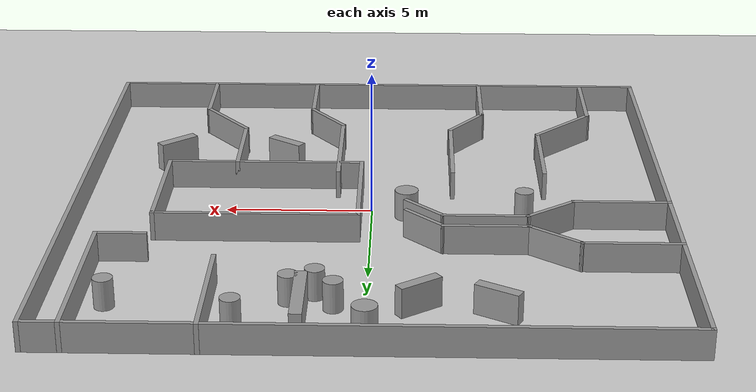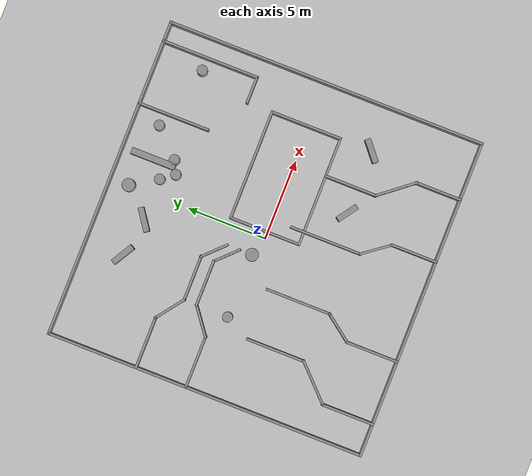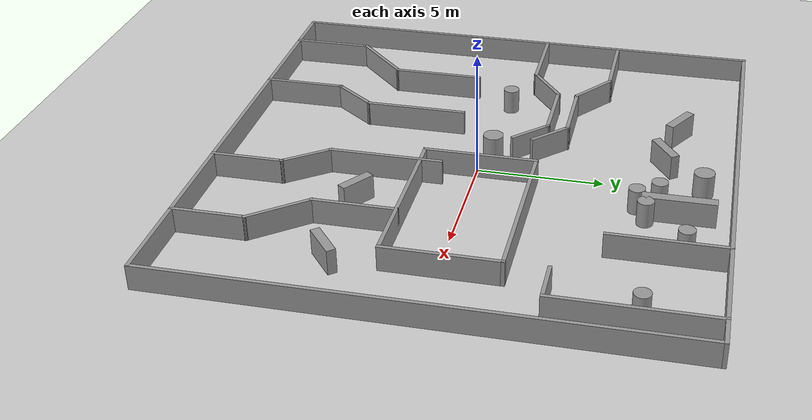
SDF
<?xml version="1.0" ?>
<sdf version="1.6">
  <world name="multi">

    <include><uri>model://sun</uri></include>
    <include><uri>model://ground_plane</uri></include>

    <physics name="default_physics" default="true" type="ode">
      <max_step_size>0.001</max_step_size>
      <real_time_factor>1.0</real_time_factor>
      <real_time_update_rate>1000</real_time_update_rate>
    </physics>

    <scene>
      <ambient>0.4 0.4 0.4 1</ambient>
      <background>0.7 0.7 0.7 1</background>
      <shadows>false</shadows>
    </scene>

    <model name="multi_obstacles">
      <static>true</static>
      <link name="body">
      <collision name="col_0">
        <pose>0.0000 -10.0000 0.5000 0 0 0.00000</pose>
        <geometry>
          <box><size>20.1500 0.1500 1.0000</size></box>
        </geometry>
      </collision>
      <visual name="vis_0">
        <pose>0.0000 -10.0000 0.5000 0 0 0.00000</pose>
        <geometry>
          <box><size>20.1500 0.1500 1.0000</size></box>
        </geometry>
        <material>
          <script>
            <uri>file://media/materials/scripts/gazebo.material</uri>
            <name>Gazebo/Grey</name>
          </script>
        </material>
      </visual>
      <collision name="col_1">
        <pose>10.0000 0.0000 0.5000 0 0 1.57080</pose>
        <geometry>
          <box><size>20.1500 0.1500 1.0000</size></box>
        </geometry>
      </collision>
      <visual name="vis_1">
        <pose>10.0000 0.0000 0.5000 0 0 1.57080</pose>
        <geometry>
          <box><size>20.1500 0.1500 1.0000</size></box>
        </geometry>
        <material>
          <script>
            <uri>file://media/materials/scripts/gazebo.material</uri>
            <name>Gazebo/Grey</name>
          </script>
        </material>
      </visual>
      <collision name="col_2">
        <pose>0.0000 10.0000 0.5000 0 0 3.14159</pose>
        <geometry>
          <box><size>20.1500 0.1500 1.0000</size></box>
        </geometry>
      </collision>
      <visual name="vis_2">
        <pose>0.0000 10.0000 0.5000 0 0 3.14159</pose>
        <geometry>
          <box><size>20.1500 0.1500 1.0000</size></box>
        </geometry>
        <material>
          <script>
            <uri>file://media/materials/scripts/gazebo.material</uri>
            <name>Gazebo/Grey</name>
          </script>
        </material>
      </visual>
      <collision name="col_3">
        <pose>-10.0000 0.0000 0.5000 0 0 -1.57080</pose>
        <geometry>
          <box><size>20.1500 0.1500 1.0000</size></box>
        </geometry>
      </collision>
      <visual name="vis_3">
        <pose>-10.0000 0.0000 0.5000 0 0 -1.57080</pose>
        <geometry>
          <box><size>20.1500 0.1500 1.0000</size></box>
        </geometry>
        <material>
          <script>
            <uri>file://media/materials/scripts/gazebo.material</uri>
            <name>Gazebo/Grey</name>
          </script>
        </material>
      </visual>
      <collision name="col_4">
        <pose>-8.4000 4.4000 0.5000 0 0 0.00000</pose>
        <geometry>
          <box><size>3.3500 0.1500 1.0000</size></box>
        </geometry>
      </collision>
      <visual name="vis_4">
        <pose>-8.4000 4.4000 0.5000 0 0 0.00000</pose>
        <geometry>
          <box><size>3.3500 0.1500 1.0000</size></box>
        </geometry>
        <material>
          <script>
            <uri>file://media/materials/scripts/gazebo.material</uri>
            <name>Gazebo/Grey</name>
          </script>
        </material>
      </visual>
      <collision name="col_5">
        <pose>-6.0000 3.8000 0.5000 0 0 -0.64350</pose>
        <geometry>
          <box><size>2.1500 0.1500 1.0000</size></box>
        </geometry>
      </collision>
      <visual name="vis_5">
        <pose>-6.0000 3.8000 0.5000 0 0 -0.64350</pose>
        <geometry>
          <box><size>2.1500 0.1500 1.0000</size></box>
        </geometry>
        <material>
          <script>
            <uri>file://media/materials/scripts/gazebo.material</uri>
            <name>Gazebo/Grey</name>
          </script>
        </material>
      </visual>
      <collision name="col_6">
        <pose>-3.8000 3.2000 0.5000 0 0 0.00000</pose>
        <geometry>
          <box><size>2.9500 0.1500 1.0000</size></box>
        </geometry>
      </collision>
      <visual name="vis_6">
        <pose>-3.8000 3.2000 0.5000 0 0 0.00000</pose>
        <geometry>
          <box><size>2.9500 0.1500 1.0000</size></box>
        </geometry>
        <material>
          <script>
            <uri>file://media/materials/scripts/gazebo.material</uri>
            <name>Gazebo/Grey</name>
          </script>
        </material>
      </visual>
      <collision name="col_7">
        <pose>-1.8000 2.6000 0.5000 0 0 -0.78540</pose>
        <geometry>
          <box><size>1.8471 0.1500 1.0000</size></box>
        </geometry>
      </collision>
      <visual name="vis_7">
        <pose>-1.8000 2.6000 0.5000 0 0 -0.78540</pose>
        <geometry>
          <box><size>1.8471 0.1500 1.0000</size></box>
        </geometry>
        <material>
          <script>
            <uri>file://media/materials/scripts/gazebo.material</uri>
            <name>Gazebo/Grey</name>
          </script>
        </material>
      </visual>
      <collision name="col_8">
        <pose>-8.4000 1.2000 0.5000 0 0 0.00000</pose>
        <geometry>
          <box><size>3.3500 0.1500 1.0000</size></box>
        </geometry>
      </collision>
      <visual name="vis_8">
        <pose>-8.4000 1.2000 0.5000 0 0 0.00000</pose>
        <geometry>
          <box><size>3.3500 0.1500 1.0000</size></box>
        </geometry>
        <material>
          <script>
            <uri>file://media/materials/scripts/gazebo.material</uri>
            <name>Gazebo/Grey</name>
          </script>
        </material>
      </visual>
      <collision name="col_9">
        <pose>-6.0000 1.8000 0.5000 0 0 0.64350</pose>
        <geometry>
          <box><size>2.1500 0.1500 1.0000</size></box>
        </geometry>
      </collision>
      <visual name="vis_9">
        <pose>-6.0000 1.8000 0.5000 0 0 0.64350</pose>
        <geometry>
          <box><size>2.1500 0.1500 1.0000</size></box>
        </geometry>
        <material>
          <script>
            <uri>file://media/materials/scripts/gazebo.material</uri>
            <name>Gazebo/Grey</name>
          </script>
        </material>
      </visual>
      <collision name="col_10">
        <pose>-3.8000 2.4000 0.5000 0 0 0.00000</pose>
        <geometry>
          <box><size>2.9500 0.1500 1.0000</size></box>
        </geometry>
      </collision>
      <visual name="vis_10">
        <pose>-3.8000 2.4000 0.5000 0 0 0.00000</pose>
        <geometry>
          <box><size>2.9500 0.1500 1.0000</size></box>
        </geometry>
        <material>
          <script>
            <uri>file://media/materials/scripts/gazebo.material</uri>
            <name>Gazebo/Grey</name>
          </script>
        </material>
      </visual>
      <collision name="col_11">
        <pose>-1.8000 1.8000 0.5000 0 0 -0.78540</pose>
        <geometry>
          <box><size>1.8471 0.1500 1.0000</size></box>
        </geometry>
      </collision>
      <visual name="vis_11">
        <pose>-1.8000 1.8000 0.5000 0 0 -0.78540</pose>
        <geometry>
          <box><size>1.8471 0.1500 1.0000</size></box>
        </geometry>
        <material>
          <script>
            <uri>file://media/materials/scripts/gazebo.material</uri>
            <name>Gazebo/Grey</name>
          </script>
        </material>
      </visual>
      <collision name="col_12">
        <pose>-8.0000 -8.4000 0.5000 0 0 1.57080</pose>
        <geometry>
          <box><size>3.3500 0.1500 1.0000</size></box>
        </geometry>
      </collision>
      <visual name="vis_12">
        <pose>-8.0000 -8.4000 0.5000 0 0 1.57080</pose>
        <geometry>
          <box><size>3.3500 0.1500 1.0000</size></box>
        </geometry>
        <material>
          <script>
            <uri>file://media/materials/scripts/gazebo.material</uri>
            <name>Gazebo/Grey</name>
          </script>
        </material>
      </visual>
      <collision name="col_13">
        <pose>-7.0000 -5.8000 0.5000 0 0 0.78540</pose>
        <geometry>
          <box><size>2.9784 0.1500 1.0000</size></box>
        </geometry>
      </collision>
      <visual name="vis_13">
        <pose>-7.0000 -5.8000 0.5000 0 0 0.78540</pose>
        <geometry>
          <box><size>2.9784 0.1500 1.0000</size></box>
        </geometry>
        <material>
          <script>
            <uri>file://media/materials/scripts/gazebo.material</uri>
            <name>Gazebo/Grey</name>
          </script>
        </material>
      </visual>
      <collision name="col_14">
        <pose>-6.0000 -3.0000 0.5000 0 0 1.57080</pose>
        <geometry>
          <box><size>3.7500 0.1500 1.0000</size></box>
        </geometry>
      </collision>
      <visual name="vis_14">
        <pose>-6.0000 -3.0000 0.5000 0 0 1.57080</pose>
        <geometry>
          <box><size>3.7500 0.1500 1.0000</size></box>
        </geometry>
        <material>
          <script>
            <uri>file://media/materials/scripts/gazebo.material</uri>
            <name>Gazebo/Grey</name>
          </script>
        </material>
      </visual>
      <collision name="col_15">
        <pose>-4.0000 -8.4000 0.5000 0 0 1.57080</pose>
        <geometry>
          <box><size>3.3500 0.1500 1.0000</size></box>
        </geometry>
      </collision>
      <visual name="vis_15">
        <pose>-4.0000 -8.4000 0.5000 0 0 1.57080</pose>
        <geometry>
          <box><size>3.3500 0.1500 1.0000</size></box>
        </geometry>
        <material>
          <script>
            <uri>file://media/materials/scripts/gazebo.material</uri>
            <name>Gazebo/Grey</name>
          </script>
        </material>
      </visual>
      <collision name="col_16">
        <pose>-3.4000 -6.0000 0.5000 0 0 0.92730</pose>
        <geometry>
          <box><size>2.1500 0.1500 1.0000</size></box>
        </geometry>
      </collision>
      <visual name="vis_16">
        <pose>-3.4000 -6.0000 0.5000 0 0 0.92730</pose>
        <geometry>
          <box><size>2.1500 0.1500 1.0000</size></box>
        </geometry>
        <material>
          <script>
            <uri>file://media/materials/scripts/gazebo.material</uri>
            <name>Gazebo/Grey</name>
          </script>
        </material>
      </visual>
      <collision name="col_17">
        <pose>-2.8000 -3.2000 0.5000 0 0 1.57080</pose>
        <geometry>
          <box><size>4.1500 0.1500 1.0000</size></box>
        </geometry>
      </collision>
      <visual name="vis_17">
        <pose>-2.8000 -3.2000 0.5000 0 0 1.57080</pose>
        <geometry>
          <box><size>4.1500 0.1500 1.0000</size></box>
        </geometry>
        <material>
          <script>
            <uri>file://media/materials/scripts/gazebo.material</uri>
            <name>Gazebo/Grey</name>
          </script>
        </material>
      </visual>
      <collision name="col_18">
        <pose>2.4000 -8.6000 0.5000 0 0 1.57080</pose>
        <geometry>
          <box><size>2.9500 0.1500 1.0000</size></box>
        </geometry>
      </collision>
      <visual name="vis_18">
        <pose>2.4000 -8.6000 0.5000 0 0 1.57080</pose>
        <geometry>
          <box><size>2.9500 0.1500 1.0000</size></box>
        </geometry>
        <material>
          <script>
            <uri>file://media/materials/scripts/gazebo.material</uri>
            <name>Gazebo/Grey</name>
          </script>
        </material>
      </visual>
      <collision name="col_19">
        <pose>1.8000 -6.4000 0.5000 0 0 2.21430</pose>
        <geometry>
          <box><size>2.1500 0.1500 1.0000</size></box>
        </geometry>
      </collision>
      <visual name="vis_19">
        <pose>1.8000 -6.4000 0.5000 0 0 2.21430</pose>
        <geometry>
          <box><size>2.1500 0.1500 1.0000</size></box>
        </geometry>
        <material>
          <script>
            <uri>file://media/materials/scripts/gazebo.material</uri>
            <name>Gazebo/Grey</name>
          </script>
        </material>
      </visual>
      <collision name="col_20">
        <pose>1.2000 -3.4000 0.5000 0 0 1.57080</pose>
        <geometry>
          <box><size>4.5500 0.1500 1.0000</size></box>
        </geometry>
      </collision>
      <visual name="vis_20">
        <pose>1.2000 -3.4000 0.5000 0 0 1.57080</pose>
        <geometry>
          <box><size>4.5500 0.1500 1.0000</size></box>
        </geometry>
        <material>
          <script>
            <uri>file://media/materials/scripts/gazebo.material</uri>
            <name>Gazebo/Grey</name>
          </script>
        </material>
      </visual>
      <collision name="col_21">
        <pose>6.4000 -8.6000 0.5000 0 0 1.57080</pose>
        <geometry>
          <box><size>2.9500 0.1500 1.0000</size></box>
        </geometry>
      </collision>
      <visual name="vis_21">
        <pose>6.4000 -8.6000 0.5000 0 0 1.57080</pose>
        <geometry>
          <box><size>2.9500 0.1500 1.0000</size></box>
        </geometry>
        <material>
          <script>
            <uri>file://media/materials/scripts/gazebo.material</uri>
            <name>Gazebo/Grey</name>
          </script>
        </material>
      </visual>
      <collision name="col_22">
        <pose>5.6000 -6.2000 0.5000 0 0 2.24554</pose>
        <geometry>
          <box><size>2.7112 0.1500 1.0000</size></box>
        </geometry>
      </collision>
      <visual name="vis_22">
        <pose>5.6000 -6.2000 0.5000 0 0 2.24554</pose>
        <geometry>
          <box><size>2.7112 0.1500 1.0000</size></box>
        </geometry>
        <material>
          <script>
            <uri>file://media/materials/scripts/gazebo.material</uri>
            <name>Gazebo/Grey</name>
          </script>
        </material>
      </visual>
      <collision name="col_23">
        <pose>4.8000 -3.6000 0.5000 0 0 1.57080</pose>
        <geometry>
          <box><size>3.3500 0.1500 1.0000</size></box>
        </geometry>
      </collision>
      <visual name="vis_23">
        <pose>4.8000 -3.6000 0.5000 0 0 1.57080</pose>
        <geometry>
          <box><size>3.3500 0.1500 1.0000</size></box>
        </geometry>
        <material>
          <script>
            <uri>file://media/materials/scripts/gazebo.material</uri>
            <name>Gazebo/Grey</name>
          </script>
        </material>
      </visual>
      <collision name="col_24">
        <pose>3.8000 -2.0000 0.5000 0 0 0.00000</pose>
        <geometry>
          <box><size>6.9500 0.1500 1.0000</size></box>
        </geometry>
      </collision>
      <visual name="vis_24">
        <pose>3.8000 -2.0000 0.5000 0 0 0.00000</pose>
        <geometry>
          <box><size>6.9500 0.1500 1.0000</size></box>
        </geometry>
        <material>
          <script>
            <uri>file://media/materials/scripts/gazebo.material</uri>
            <name>Gazebo/Grey</name>
          </script>
        </material>
      </visual>
      <collision name="col_25">
        <pose>7.2000 0.2000 0.5000 0 0 1.57080</pose>
        <geometry>
          <box><size>4.5500 0.1500 1.0000</size></box>
        </geometry>
      </collision>
      <visual name="vis_25">
        <pose>7.2000 0.2000 0.5000 0 0 1.57080</pose>
        <geometry>
          <box><size>4.5500 0.1500 1.0000</size></box>
        </geometry>
        <material>
          <script>
            <uri>file://media/materials/scripts/gazebo.material</uri>
            <name>Gazebo/Grey</name>
          </script>
        </material>
      </visual>
      <collision name="col_26">
        <pose>3.8000 2.4000 0.5000 0 0 3.14159</pose>
        <geometry>
          <box><size>6.9500 0.1500 1.0000</size></box>
        </geometry>
      </collision>
      <visual name="vis_26">
        <pose>3.8000 2.4000 0.5000 0 0 3.14159</pose>
        <geometry>
          <box><size>6.9500 0.1500 1.0000</size></box>
        </geometry>
        <material>
          <script>
            <uri>file://media/materials/scripts/gazebo.material</uri>
            <name>Gazebo/Grey</name>
          </script>
        </material>
      </visual>
      <collision name="col_27">
        <pose>0.4000 0.2000 0.5000 0 0 -1.57080</pose>
        <geometry>
          <box><size>4.5500 0.1500 1.0000</size></box>
        </geometry>
      </collision>
      <visual name="vis_27">
        <pose>0.4000 0.2000 0.5000 0 0 -1.57080</pose>
        <geometry>
          <box><size>4.5500 0.1500 1.0000</size></box>
        </geometry>
        <material>
          <script>
            <uri>file://media/materials/scripts/gazebo.material</uri>
            <name>Gazebo/Grey</name>
          </script>
        </material>
      </visual>
      <collision name="col_28">
        <pose>8.0000 4.0000 0.5000 0 0 0.00000</pose>
        <geometry>
          <box><size>1.7500 0.1500 1.0000</size></box>
        </geometry>
      </collision>
      <visual name="vis_28">
        <pose>8.0000 4.0000 0.5000 0 0 0.00000</pose>
        <geometry>
          <box><size>1.7500 0.1500 1.0000</size></box>
        </geometry>
        <material>
          <script>
            <uri>file://media/materials/scripts/gazebo.material</uri>
            <name>Gazebo/Grey</name>
          </script>
        </material>
      </visual>
      <collision name="col_29">
        <pose>8.8000 7.0000 0.5000 0 0 1.57080</pose>
        <geometry>
          <box><size>6.1500 0.1500 1.0000</size></box>
        </geometry>
      </collision>
      <visual name="vis_29">
        <pose>8.8000 7.0000 0.5000 0 0 1.57080</pose>
        <geometry>
          <box><size>6.1500 0.1500 1.0000</size></box>
        </geometry>
        <material>
          <script>
            <uri>file://media/materials/scripts/gazebo.material</uri>
            <name>Gazebo/Grey</name>
          </script>
        </material>
      </visual>
      <collision name="col_30">
        <pose>4.8000 7.8000 0.5000 0 0 1.57080</pose>
        <geometry>
          <box><size>4.5500 0.1500 1.0000</size></box>
        </geometry>
      </collision>
      <visual name="vis_30">
        <pose>4.8000 7.8000 0.5000 0 0 1.57080</pose>
        <geometry>
          <box><size>4.5500 0.1500 1.0000</size></box>
        </geometry>
        <material>
          <script>
            <uri>file://media/materials/scripts/gazebo.material</uri>
            <name>Gazebo/Grey</name>
          </script>
        </material>
      </visual>
      <collision name="col_31">
        <pose>2.0000 8.0000 0.5000 0 0 0.00000</pose>
        <geometry>
          <box><size>0.4000 2.8000 1.0000</size></box>
        </geometry>
      </collision>
      <visual name="vis_31">
        <pose>2.0000 8.0000 0.5000 0 0 0.00000</pose>
        <geometry>
          <box><size>0.4000 2.8000 1.0000</size></box>
        </geometry>
        <material>
          <script>
            <uri>file://media/materials/scripts/gazebo.material</uri>
            <name>Gazebo/Grey</name>
          </script>
        </material>
      </visual>
      <collision name="col_32">
        <pose>-1.6000 7.2000 0.5000 0 0 0.61087</pose>
        <geometry>
          <box><size>1.5000 0.3600 1.0000</size></box>
        </geometry>
      </collision>
      <visual name="vis_32">
        <pose>-1.6000 7.2000 0.5000 0 0 0.61087</pose>
        <geometry>
          <box><size>1.5000 0.3600 1.0000</size></box>
        </geometry>
        <material>
          <script>
            <uri>file://media/materials/scripts/gazebo.material</uri>
            <name>Gazebo/Grey</name>
          </script>
        </material>
      </visual>
      <collision name="col_33">
        <pose>-4.0000 7.6000 0.5000 0 0 -0.52360</pose>
        <geometry>
          <box><size>1.5000 0.3600 1.0000</size></box>
        </geometry>
      </collision>
      <visual name="vis_33">
        <pose>-4.0000 7.6000 0.5000 0 0 -0.52360</pose>
        <geometry>
          <box><size>1.5000 0.3600 1.0000</size></box>
        </geometry>
        <material>
          <script>
            <uri>file://media/materials/scripts/gazebo.material</uri>
            <name>Gazebo/Grey</name>
          </script>
        </material>
      </visual>
      <collision name="col_34">
        <pose>7.2000 -4.0000 0.5000 0 0 0.69813</pose>
        <geometry>
          <box><size>1.5000 0.3600 1.0000</size></box>
        </geometry>
      </collision>
      <visual name="vis_34">
        <pose>7.2000 -4.0000 0.5000 0 0 0.69813</pose>
        <geometry>
          <box><size>1.5000 0.3600 1.0000</size></box>
        </geometry>
        <material>
          <script>
            <uri>file://media/materials/scripts/gazebo.material</uri>
            <name>Gazebo/Grey</name>
          </script>
        </material>
      </visual>
      <collision name="col_35">
        <pose>3.2000 -4.0000 0.5000 0 0 -0.61087</pose>
        <geometry>
          <box><size>1.4000 0.3600 1.0000</size></box>
        </geometry>
      </collision>
      <visual name="vis_35">
        <pose>3.2000 -4.0000 0.5000 0 0 -0.61087</pose>
        <geometry>
          <box><size>1.4000 0.3600 1.0000</size></box>
        </geometry>
        <material>
          <script>
            <uri>file://media/materials/scripts/gazebo.material</uri>
            <name>Gazebo/Grey</name>
          </script>
        </material>
      </visual>
      <collision name="col_36">
        <pose>0.0000 8.8000 0.5000 0 0 0.00000</pose>
        <geometry>
          <cylinder><radius>0.4000</radius><length>1.0000</length></cylinder>
        </geometry>
      </collision>
      <visual name="vis_36">
        <pose>0.0000 8.8000 0.5000 0 0 0.00000</pose>
        <geometry>
          <cylinder><radius>0.4000</radius><length>1.0000</length></cylinder>
        </geometry>
        <material>
          <script>
            <uri>file://media/materials/scripts/gazebo.material</uri>
            <name>Gazebo/Grey</name>
          </script>
        </material>
      </visual>
      <collision name="col_37">
        <pose>1.0000 7.2000 0.5000 0 0 0.00000</pose>
        <geometry>
          <cylinder><radius>0.3200</radius><length>1.0000</length></cylinder>
        </geometry>
      </collision>
      <visual name="vis_37">
        <pose>1.0000 7.2000 0.5000 0 0 0.00000</pose>
        <geometry>
          <cylinder><radius>0.3200</radius><length>1.0000</length></cylinder>
        </geometry>
        <material>
          <script>
            <uri>file://media/materials/scripts/gazebo.material</uri>
            <name>Gazebo/Grey</name>
          </script>
        </material>
      </visual>
      <collision name="col_38">
        <pose>1.6000 6.4000 0.5000 0 0 0.00000</pose>
        <geometry>
          <cylinder><radius>0.3200</radius><length>1.0000</length></cylinder>
        </geometry>
      </collision>
      <visual name="vis_38">
        <pose>1.6000 6.4000 0.5000 0 0 0.00000</pose>
        <geometry>
          <cylinder><radius>0.3200</radius><length>1.0000</length></cylinder>
        </geometry>
        <material>
          <script>
            <uri>file://media/materials/scripts/gazebo.material</uri>
            <name>Gazebo/Grey</name>
          </script>
        </material>
      </visual>
      <collision name="col_39">
        <pose>2.4000 6.8000 0.5000 0 0 0.00000</pose>
        <geometry>
          <cylinder><radius>0.3200</radius><length>1.0000</length></cylinder>
        </geometry>
      </collision>
      <visual name="vis_39">
        <pose>2.4000 6.8000 0.5000 0 0 0.00000</pose>
        <geometry>
          <cylinder><radius>0.3200</radius><length>1.0000</length></cylinder>
        </geometry>
        <material>
          <script>
            <uri>file://media/materials/scripts/gazebo.material</uri>
            <name>Gazebo/Grey</name>
          </script>
        </material>
      </visual>
      <collision name="col_40">
        <pose>4.0000 8.4000 0.5000 0 0 0.00000</pose>
        <geometry>
          <cylinder><radius>0.3200</radius><length>1.0000</length></cylinder>
        </geometry>
      </collision>
      <visual name="vis_40">
        <pose>4.0000 8.4000 0.5000 0 0 0.00000</pose>
        <geometry>
          <cylinder><radius>0.3200</radius><length>1.0000</length></cylinder>
        </geometry>
        <material>
          <script>
            <uri>file://media/materials/scripts/gazebo.material</uri>
            <name>Gazebo/Grey</name>
          </script>
        </material>
      </visual>
      <collision name="col_41">
        <pose>-1.2000 0.4000 0.5000 0 0 0.00000</pose>
        <geometry>
          <cylinder><radius>0.4000</radius><length>1.0000</length></cylinder>
        </geometry>
      </collision>
      <visual name="vis_41">
        <pose>-1.2000 0.4000 0.5000 0 0 0.00000</pose>
        <geometry>
          <cylinder><radius>0.4000</radius><length>1.0000</length></cylinder>
        </geometry>
        <material>
          <script>
            <uri>file://media/materials/scripts/gazebo.material</uri>
            <name>Gazebo/Grey</name>
          </script>
        </material>
      </visual>
      <collision name="col_42">
        <pose>8.0000 7.2000 0.5000 0 0 0.00000</pose>
        <geometry>
          <cylinder><radius>0.3200</radius><length>1.0000</length></cylinder>
        </geometry>
      </collision>
      <visual name="vis_42">
        <pose>8.0000 7.2000 0.5000 0 0 0.00000</pose>
        <geometry>
          <cylinder><radius>0.3200</radius><length>1.0000</length></cylinder>
        </geometry>
        <material>
          <script>
            <uri>file://media/materials/scripts/gazebo.material</uri>
            <name>Gazebo/Grey</name>
          </script>
        </material>
      </visual>
      <collision name="col_43">
        <pose>-5.2000 0.4000 0.5000 0 0 0.00000</pose>
        <geometry>
          <cylinder><radius>0.3200</radius><length>1.0000</length></cylinder>
        </geometry>
      </collision>
      <visual name="vis_43">
        <pose>-5.2000 0.4000 0.5000 0 0 0.00000</pose>
        <geometry>
          <cylinder><radius>0.3200</radius><length>1.0000</length></cylinder>
        </geometry>
        <material>
          <script>
            <uri>file://media/materials/scripts/gazebo.material</uri>
            <name>Gazebo/Grey</name>
          </script>
        </material>
      </visual>
      </link>
    </model>

  </world>
</sdf>
